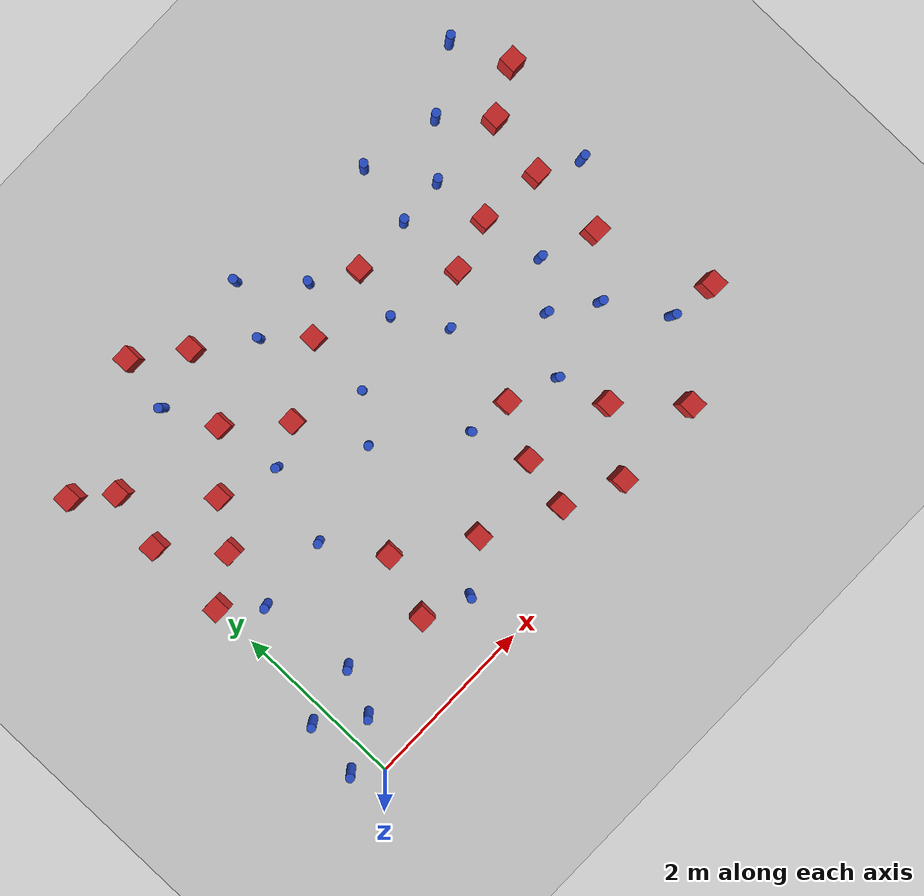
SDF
<sdf version="1.6">
 <world name="default">
  <model name="ground_plane">
   <static>1</static>
   <link name="link">
    <collision name="collision">
     <geometry><plane><normal>0 0 1</normal><size>100 100</size></plane></geometry>
     <surface><friction><ode><mu>100</mu><mu2>50</mu2></ode></friction></surface>
    </collision>
    <visual name="visual">
     <cast_shadows>0</cast_shadows>
     <geometry><plane><normal>0 0 1</normal><size>100 100</size></plane></geometry>
     <material>
      <ambient>1.0 1.0 1.0 1.0</ambient>
      <diffuse>0.8 0.8 0.8 1.0</diffuse>
      <specular>0.01 0.01 0.01 1.000000</specular>
     </material>
    </visual>
   </link>
  </model>
  <model name="pole_obstacle1">
   <static>true</static>
   <pose>2.42879736191 4.18457086736 2.88873142074e-08 -9.90536689859e-09 4.60219948989e-07 -1.20965994961e-07</pose>
   <link name="link">
    <pose>0 0 0.3 0 -0 0</pose>
    <inertial>
     <mass>1</mass>
     <inertia><ixx>0.145833</ixx><ixy>0</ixy><ixz>0</ixz><iyy>0.145833</iyy><iyz>0</iyz><izz>0.125</izz></inertia>
    </inertial>
    <collision name="collision">
     <geometry><cylinder><radius>0.05</radius><length>.6</length></cylinder></geometry>
    </collision>
    <visual name="visual">
     <geometry><cylinder><radius>0.05</radius><length>.6</length></cylinder></geometry>
     <material>
      <script><name>Gazebo/Blue</name><uri>file://media/materials/scripts/gazebo.material</uri></script>
     </material>
    </visual>
   </link>
  </model>
  <model name="square_post_obstacle9">
   <static>true</static>
   <pose>1.46546212937 3.84372808108 8.22691968438e-08 7.2212513382e-06 -7.54495500217e-07 2.29674213826e-05</pose>
   <link name="link">
    <pose>0 0 0.25 0 -0 0</pose>
    <inertial>
     <mass>100</mass>
     <inertia>
      <ixx>0.166667</ixx>
      <ixy>0</ixy>
      <ixz>0</ixz>
      <iyy>0.166667</iyy>
      <iyz>0</iyz>
      <izz>0.166667</izz>
     </inertia>
    </inertial>
    <collision name="collision"><geometry><box><size>.2 .2 .5</size></box></geometry></collision>
    <visual name="visual">
     <geometry><box><size>.2 .2 .5</size></box></geometry>
     <material>
      <script><name>Gazebo/Red</name><uri>file://media/materials/scripts/gazebo.material</uri></script>
     </material>
    </visual>
   </link>
  </model>
  <model name="square_post_obstacle25">
   <static>true</static>
   <pose>5.09198572183 0.379569240633 8.22691968438e-08 7.2212513382e-06 -7.54495500217e-07 2.29674213826e-05</pose>
   <link name="link">
    <pose>0 0 0.25 0 -0 0</pose>
    <inertial>
     <mass>100</mass>
     <inertia>
      <ixx>0.166667</ixx>
      <ixy>0</ixy>
      <ixz>0</ixz>
      <iyy>0.166667</iyy>
      <iyz>0</iyz>
      <izz>0.166667</izz>
     </inertia>
    </inertial>
    <collision name="collision"><geometry><box><size>.2 .2 .5</size></box></geometry></collision>
    <visual name="visual">
     <geometry><box><size>.2 .2 .5</size></box></geometry>
     <material>
      <script><name>Gazebo/Red</name><uri>file://media/materials/scripts/gazebo.material</uri></script>
     </material>
    </visual>
   </link>
  </model>
  <model name="pole_obstacle24">
   <static>true</static>
   <pose>2.69714781437 4.78767704699 2.88873142074e-08 -9.90536689859e-09 4.60219948989e-07 -1.20965994961e-07</pose>
   <link name="link">
    <pose>0 0 0.3 0 -0 0</pose>
    <inertial>
     <mass>1</mass>
     <inertia><ixx>0.145833</ixx><ixy>0</ixy><ixz>0</ixz><iyy>0.145833</iyy><iyz>0</iyz><izz>0.125</izz></inertia>
    </inertial>
    <collision name="collision">
     <geometry><cylinder><radius>0.05</radius><length>.6</length></cylinder></geometry>
    </collision>
    <visual name="visual">
     <geometry><cylinder><radius>0.05</radius><length>.6</length></cylinder></geometry>
     <material>
      <script><name>Gazebo/Blue</name><uri>file://media/materials/scripts/gazebo.material</uri></script>
     </material>
    </visual>
   </link>
  </model>
  <model name="pole_obstacle30">
   <static>true</static>
   <pose>2.00604831403 0.665068035087 2.88873142074e-08 -9.90536689439e-09 4.60219948999e-07 -1.20965994955e-07</pose>
   <link name="link">
    <pose>0 0 0.3 0 -0 0</pose>
    <inertial>
     <mass>1</mass>
     <inertia><ixx>0.145833</ixx><ixy>0</ixy><ixz>0</ixz><iyy>0.145833</iyy><iyz>0</iyz><izz>0.125</izz></inertia>
    </inertial>
    <collision name="collision">
     <geometry><cylinder><radius>0.05</radius><length>.6</length></cylinder></geometry>
    </collision>
    <visual name="visual">
     <geometry><cylinder><radius>0.05</radius><length>.6</length></cylinder></geometry>
     <material>
      <script><name>Gazebo/Blue</name><uri>file://media/materials/scripts/gazebo.material</uri></script>
     </material>
    </visual>
   </link>
  </model>
  <model name="square_post_obstacle35">
   <static>true</static>
   <pose>4.41631384137 3.15511355681 8.22691968438e-08 7.2212513382e-06 -7.54495500217e-07 2.29674213826e-05</pose>
   <link name="link">
    <pose>0 0 0.25 0 -0 0</pose>
    <inertial>
     <mass>100</mass>
     <inertia>
      <ixx>0.166667</ixx>
      <ixy>0</ixy>
      <ixz>0</ixz>
      <iyy>0.166667</iyy>
      <iyz>0</iyz>
      <izz>0.166667</izz>
     </inertia>
    </inertial>
    <collision name="collision"><geometry><box><size>.2 .2 .5</size></box></geometry></collision>
    <visual name="visual">
     <geometry><box><size>.2 .2 .5</size></box></geometry>
     <material>
      <script><name>Gazebo/Red</name><uri>file://media/materials/scripts/gazebo.material</uri></script>
     </material>
    </visual>
   </link>
  </model>
  <model name="square_post_obstacle36">
   <static>true</static>
   <pose>5.7311031126 2.38789803217 8.22691968438e-08 7.2212513382e-06 -7.54495500217e-07 2.29674213826e-05</pose>
   <link name="link">
    <pose>0 0 0.25 0 -0 0</pose>
    <inertial>
     <mass>100</mass>
     <inertia>
      <ixx>0.166667</ixx>
      <ixy>0</ixy>
      <ixz>0</ixz>
      <iyy>0.166667</iyy>
      <iyz>0</iyz>
      <izz>0.166667</izz>
     </inertia>
    </inertial>
    <collision name="collision"><geometry><box><size>.2 .2 .5</size></box></geometry></collision>
    <visual name="visual">
     <geometry><box><size>.2 .2 .5</size></box></geometry>
     <material>
      <script><name>Gazebo/Red</name><uri>file://media/materials/scripts/gazebo.material</uri></script>
     </material>
    </visual>
   </link>
  </model>
  <model name="square_post_obstacle38">
   <static>true</static>
   <pose>0.91676435713 3.32296209286 8.22691968438e-08 7.2212513382e-06 -7.54495500217e-07 2.29674213826e-05</pose>
   <link name="link">
    <pose>0 0 0.25 0 -0 0</pose>
    <inertial>
     <mass>100</mass>
     <inertia>
      <ixx>0.166667</ixx>
      <ixy>0</ixy>
      <ixz>0</ixz>
      <iyy>0.166667</iyy>
      <iyz>0</iyz>
      <izz>0.166667</izz>
     </inertia>
    </inertial>
    <collision name="collision"><geometry><box><size>.2 .2 .5</size></box></geometry></collision>
    <visual name="visual">
     <geometry><box><size>.2 .2 .5</size></box></geometry>
     <material>
      <script><name>Gazebo/Red</name><uri>file://media/materials/scripts/gazebo.material</uri></script>
     </material>
    </visual>
   </link>
  </model>
  <model name="square_post_obstacle39">
   <static>true</static>
   <pose>1.48990750921 0.880755100944 8.22691968438e-08 7.2212513382e-06 -7.54495500217e-07 2.29674213826e-05</pose>
   <link name="link">
    <pose>0 0 0.25 0 -0 0</pose>
    <inertial>
     <mass>100</mass>
     <inertia>
      <ixx>0.166667</ixx>
      <ixy>0</ixy>
      <ixz>0</ixz>
      <iyy>0.166667</iyy>
      <iyz>0</iyz>
      <izz>0.166667</izz>
     </inertia>
    </inertial>
    <collision name="collision"><geometry><box><size>.2 .2 .5</size></box></geometry></collision>
    <visual name="visual">
     <geometry><box><size>.2 .2 .5</size></box></geometry>
     <material>
      <script><name>Gazebo/Red</name><uri>file://media/materials/scripts/gazebo.material</uri></script>
     </material>
    </visual>
   </link>
  </model>
  <model name="square_post_obstacle44">
   <static>true</static>
   <pose>2.83607221514 3.76554138806 8.22691968438e-08 7.2212513382e-06 -7.54495500217e-07 2.29674213826e-05</pose>
   <link name="link">
    <pose>0 0 0.25 0 -0 0</pose>
    <inertial>
     <mass>100</mass>
     <inertia>
      <ixx>0.166667</ixx>
      <ixy>0</ixy>
      <ixz>0</ixz>
      <iyy>0.166667</iyy>
      <iyz>0</iyz>
      <izz>0.166667</izz>
     </inertia>
    </inertial>
    <collision name="collision"><geometry><box><size>.2 .2 .5</size></box></geometry></collision>
    <visual name="visual">
     <geometry><box><size>.2 .2 .5</size></box></geometry>
     <material>
      <script><name>Gazebo/Red</name><uri>file://media/materials/scripts/gazebo.material</uri></script>
     </material>
    </visual>
   </link>
  </model>
  <model name="pole_obstacle58">
   <static>true</static>
   <pose>4.32657817488 1.60059942653 2.88873142074e-08 -9.90536689445e-09 4.60219948999e-07 -1.20965994956e-07</pose>
   <link name="link">
    <pose>0 0 0.3 0 -0 0</pose>
    <inertial>
     <mass>1</mass>
     <inertia><ixx>0.145833</ixx><ixy>0</ixy><ixz>0</ixz><iyy>0.145833</iyy><iyz>0</iyz><izz>0.125</izz></inertia>
    </inertial>
    <collision name="collision">
     <geometry><cylinder><radius>0.05</radius><length>.6</length></cylinder></geometry>
    </collision>
    <visual name="visual">
     <geometry><cylinder><radius>0.05</radius><length>.6</length></cylinder></geometry>
     <material>
      <script><name>Gazebo/Blue</name><uri>file://media/materials/scripts/gazebo.material</uri></script>
     </material>
    </visual>
   </link>
  </model>
  <model name="square_post_obstacle63">
   <static>true</static>
   <pose>6.16989699377 1.10194753683 8.22691968438e-08 7.2212513382e-06 -7.54495500217e-07 2.29674213826e-05</pose>
   <link name="link">
    <pose>0 0 0.25 0 -0 0</pose>
    <inertial>
     <mass>100</mass>
     <inertia>
      <ixx>0.166667</ixx>
      <ixy>0</ixy>
      <ixz>0</ixz>
      <iyy>0.166667</iyy>
      <iyz>0</iyz>
      <izz>0.166667</izz>
     </inertia>
    </inertial>
    <collision name="collision"><geometry><box><size>.2 .2 .5</size></box></geometry></collision>
    <visual name="visual">
     <geometry><box><size>.2 .2 .5</size></box></geometry>
     <material>
      <script><name>Gazebo/Red</name><uri>file://media/materials/scripts/gazebo.material</uri></script>
     </material>
    </visual>
   </link>
  </model>
  <model name="pole_obstacle61">
   <static>true</static>
   <pose>0.33544223323 0.570125460111 2.88873142074e-08 -9.9053668986e-09 4.60219948989e-07 -1.20965994961e-07</pose>
   <link name="link">
    <pose>0 0 0.3 0 -0 0</pose>
    <inertial>
     <mass>1</mass>
     <inertia><ixx>0.145833</ixx><ixy>0</ixy><ixz>0</ixz><iyy>0.145833</iyy><iyz>0</iyz><izz>0.125</izz></inertia>
    </inertial>
    <collision name="collision">
     <geometry><cylinder><radius>0.05</radius><length>.6</length></cylinder></geometry>
    </collision>
    <visual name="visual">
     <geometry><cylinder><radius>0.05</radius><length>.6</length></cylinder></geometry>
     <material>
      <script><name>Gazebo/Blue</name><uri>file://media/materials/scripts/gazebo.material</uri></script>
     </material>
    </visual>
   </link>
  </model>
  <model name="square_post_obstacle65">
   <static>true</static>
   <pose>2.52627936273 1.03918405239 8.22691968438e-08 7.2212513382e-06 -7.54495500217e-07 2.29674213826e-05</pose>
   <link name="link">
    <pose>0 0 0.25 0 -0 0</pose>
    <inertial>
     <mass>100</mass>
     <inertia>
      <ixx>0.166667</ixx>
      <ixy>0</ixy>
      <ixz>0</ixz>
      <iyy>0.166667</iyy>
      <iyz>0</iyz>
      <izz>0.166667</izz>
     </inertia>
    </inertial>
    <collision name="collision"><geometry><box><size>.2 .2 .5</size></box></geometry></collision>
    <visual name="visual">
     <geometry><box><size>.2 .2 .5</size></box></geometry>
     <material>
      <script><name>Gazebo/Red</name><uri>file://media/materials/scripts/gazebo.material</uri></script>
     </material>
    </visual>
   </link>
  </model>
  <model name="square_post_obstacle69">
   <static>true</static>
   <pose>-0.185591999137 4.46452771068 8.22691968438e-08 7.22125133819e-06 -7.54495500217e-07 2.29674213826e-05</pose>
   <link name="link">
    <pose>0 0 0.25 0 -0 0</pose>
    <inertial>
     <mass>100</mass>
     <inertia>
      <ixx>0.166667</ixx>
      <ixy>0</ixy>
      <ixz>0</ixz>
      <iyy>0.166667</iyy>
      <iyz>0</iyz>
      <izz>0.166667</izz>
     </inertia>
    </inertial>
    <collision name="collision"><geometry><box><size>.2 .2 .5</size></box></geometry></collision>
    <visual name="visual">
     <geometry><box><size>.2 .2 .5</size></box></geometry>
     <material>
      <script><name>Gazebo/Red</name><uri>file://media/materials/scripts/gazebo.material</uri></script>
     </material>
    </visual>
   </link>
  </model>
  <model name="square_post_obstacle72">
   <static>true</static>
   <pose>5.85654030803 3.98428642009 8.22691968438e-08 7.2212513382e-06 -7.54495500217e-07 2.29674213826e-05</pose>
   <link name="link">
    <pose>0 0 0.25 0 -0 0</pose>
    <inertial>
     <mass>100</mass>
     <inertia>
      <ixx>0.166667</ixx>
      <ixy>0</ixy>
      <ixz>0</ixz>
      <iyy>0.166667</iyy>
      <iyz>0</iyz>
      <izz>0.166667</izz>
     </inertia>
    </inertial>
    <collision name="collision"><geometry><box><size>.2 .2 .5</size></box></geometry></collision>
    <visual name="visual">
     <geometry><box><size>.2 .2 .5</size></box></geometry>
     <material>
      <script><name>Gazebo/Red</name><uri>file://media/materials/scripts/gazebo.material</uri></script>
     </material>
    </visual>
   </link>
  </model>
  <model name="pole_obstacle75">
   <static>true</static>
   <pose>1.30411790574 2.22393959754 2.88873142074e-08 -9.90536689791e-09 4.6021994899e-07 -1.20965994959e-07</pose>
   <link name="link">
    <pose>0 0 0.3 0 -0 0</pose>
    <inertial>
     <mass>1</mass>
     <inertia><ixx>0.145833</ixx><ixy>0</ixy><ixz>0</ixz><iyy>0.145833</iyy><iyz>0</iyz><izz>0.125</izz></inertia>
    </inertial>
    <collision name="collision">
     <geometry><cylinder><radius>0.05</radius><length>.6</length></cylinder></geometry>
    </collision>
    <visual name="visual">
     <geometry><cylinder><radius>0.05</radius><length>.6</length></cylinder></geometry>
     <material>
      <script><name>Gazebo/Blue</name><uri>file://media/materials/scripts/gazebo.material</uri></script>
     </material>
    </visual>
   </link>
  </model>
  <model name="pole_obstacle78">
   <static>true</static>
   <pose>0.425904295842 2.16052627822 2.88873142074e-08 -9.90536689663e-09 4.60219948993e-07 -1.20965994959e-07</pose>
   <link name="link">
    <pose>0 0 0.3 0 -0 0</pose>
    <inertial>
     <mass>1</mass>
     <inertia><ixx>0.145833</ixx><ixy>0</ixy><ixz>0</ixz><iyy>0.145833</iyy><iyz>0</iyz><izz>0.125</izz></inertia>
    </inertial>
    <collision name="collision">
     <geometry><cylinder><radius>0.05</radius><length>.6</length></cylinder></geometry>
    </collision>
    <visual name="visual">
     <geometry><cylinder><radius>0.05</radius><length>.6</length></cylinder></geometry>
     <material>
      <script><name>Gazebo/Blue</name><uri>file://media/materials/scripts/gazebo.material</uri></script>
     </material>
    </visual>
   </link>
  </model>
  <model name="pole_obstacle81">
   <static>true</static>
   <pose>3.2746297439 1.86817827483 2.88873142074e-08 -9.90536689395e-09 4.60219949e-07 -1.20965994953e-07</pose>
   <link name="link">
    <pose>0 0 0.3 0 -0 0</pose>
    <inertial>
     <mass>1</mass>
     <inertia><ixx>0.145833</ixx><ixy>0</ixy><ixz>0</ixz><iyy>0.145833</iyy><iyz>0</iyz><izz>0.125</izz></inertia>
    </inertial>
    <collision name="collision">
     <geometry><cylinder><radius>0.05</radius><length>.6</length></cylinder></geometry>
    </collision>
    <visual name="visual">
     <geometry><cylinder><radius>0.05</radius><length>.6</length></cylinder></geometry>
     <material>
      <script><name>Gazebo/Blue</name><uri>file://media/materials/scripts/gazebo.material</uri></script>
     </material>
    </visual>
   </link>
  </model>
  <model name="pole_obstacle86">
   <static>true</static>
   <pose>6.12498636645 4.90773806376 2.88873142074e-08 -9.90536690842e-09 4.60219948965e-07 -1.20965994976e-07</pose>
   <link name="link">
    <pose>0 0 0.3 0 -0 0</pose>
    <inertial>
     <mass>1</mass>
     <inertia><ixx>0.145833</ixx><ixy>0</ixy><ixz>0</ixz><iyy>0.145833</iyy><iyz>0</iyz><izz>0.125</izz></inertia>
    </inertial>
    <collision name="collision">
     <geometry><cylinder><radius>0.05</radius><length>.6</length></cylinder></geometry>
    </collision>
    <visual name="visual">
     <geometry><cylinder><radius>0.05</radius><length>.6</length></cylinder></geometry>
     <material>
      <script><name>Gazebo/Blue</name><uri>file://media/materials/scripts/gazebo.material</uri></script>
     </material>
    </visual>
   </link>
  </model>
  <model name="pole_obstacle96">
   <static>true</static>
   <pose>0.559772825662 1.08389808421 2.88873142074e-08 -9.90536689855e-09 4.60219948989e-07 -1.20965994962e-07</pose>
   <link name="link">
    <pose>0 0 0.3 0 -0 0</pose>
    <inertial>
     <mass>1</mass>
     <inertia><ixx>0.145833</ixx><ixy>0</ixy><ixz>0</ixz><iyy>0.145833</iyy><iyz>0</iyz><izz>0.125</izz></inertia>
    </inertial>
    <collision name="collision">
     <geometry><cylinder><radius>0.05</radius><length>.6</length></cylinder></geometry>
    </collision>
    <visual name="visual">
     <geometry><cylinder><radius>0.05</radius><length>.6</length></cylinder></geometry>
     <material>
      <script><name>Gazebo/Blue</name><uri>file://media/materials/scripts/gazebo.material</uri></script>
     </material>
    </visual>
   </link>
  </model>
  <model name="pole_obstacle97">
   <static>true</static>
   <pose>4.74378613118 2.1611026884 2.88873142074e-08 -9.90536690245e-09 4.6021994898e-07 -1.20965994966e-07</pose>
   <link name="link">
    <pose>0 0 0.3 0 -0 0</pose>
    <inertial>
     <mass>1</mass>
     <inertia><ixx>0.145833</ixx><ixy>0</ixy><ixz>0</ixz><iyy>0.145833</iyy><iyz>0</iyz><izz>0.125</izz></inertia>
    </inertial>
    <collision name="collision">
     <geometry><cylinder><radius>0.05</radius><length>.6</length></cylinder></geometry>
    </collision>
    <visual name="visual">
     <geometry><cylinder><radius>0.05</radius><length>.6</length></cylinder></geometry>
     <material>
      <script><name>Gazebo/Blue</name><uri>file://media/materials/scripts/gazebo.material</uri></script>
     </material>
    </visual>
   </link>
  </model>
  <model name="square_post_obstacle94">
   <static>true</static>
   <pose>5.74151208858 3.26293217568 8.22691968438e-08 7.2212513382e-06 -7.54495500217e-07 2.29674213826e-05</pose>
   <link name="link">
    <pose>0 0 0.25 0 -0 0</pose>
    <inertial>
     <mass>100</mass>
     <inertia>
      <ixx>0.166667</ixx>
      <ixy>0</ixy>
      <ixz>0</ixz>
      <iyy>0.166667</iyy>
      <iyz>0</iyz>
      <izz>0.166667</izz>
     </inertia>
    </inertial>
    <collision name="collision"><geometry><box><size>.2 .2 .5</size></box></geometry></collision>
    <visual name="visual">
     <geometry><box><size>.2 .2 .5</size></box></geometry>
     <material>
      <script><name>Gazebo/Red</name><uri>file://media/materials/scripts/gazebo.material</uri></script>
     </material>
    </visual>
   </link>
  </model>
  <model name="pole_obstacle118">
   <static>true</static>
   <pose>2.78810854611 3.00477062767 2.88873142074e-08 -9.90536690232e-09 4.6021994898e-07 -1.20965994968e-07</pose>
   <link name="link">
    <pose>0 0 0.3 0 -0 0</pose>
    <inertial>
     <mass>1</mass>
     <inertia><ixx>0.145833</ixx><ixy>0</ixy><ixz>0</ixz><iyy>0.145833</iyy><iyz>0</iyz><izz>0.125</izz></inertia>
    </inertial>
    <collision name="collision">
     <geometry><cylinder><radius>0.05</radius><length>.6</length></cylinder></geometry>
    </collision>
    <visual name="visual">
     <geometry><cylinder><radius>0.05</radius><length>.6</length></cylinder></geometry>
     <material>
      <script><name>Gazebo/Blue</name><uri>file://media/materials/scripts/gazebo.material</uri></script>
     </material>
    </visual>
   </link>
  </model>
  <model name="pole_obstacle126">
   <static>true</static>
   <pose>4.94650584808 3.96422720678 2.88873142074e-08 -9.9053669014e-09 4.60219948982e-07 -1.20965994965e-07</pose>
   <link name="link">
    <pose>0 0 0.3 0 -0 0</pose>
    <inertial>
     <mass>1</mass>
     <inertia><ixx>0.145833</ixx><ixy>0</ixy><ixz>0</ixz><iyy>0.145833</iyy><iyz>0</iyz><izz>0.125</izz></inertia>
    </inertial>
    <collision name="collision">
     <geometry><cylinder><radius>0.05</radius><length>.6</length></cylinder></geometry>
    </collision>
    <visual name="visual">
     <geometry><cylinder><radius>0.05</radius><length>.6</length></cylinder></geometry>
     <material>
      <script><name>Gazebo/Blue</name><uri>file://media/materials/scripts/gazebo.material</uri></script>
     </material>
    </visual>
   </link>
  </model>
  <model name="pole_obstacle129">
   <static>true</static>
   <pose>1.56967960495 3.09597458498 2.88873142074e-08 -9.90536689791e-09 4.6021994899e-07 -1.20965994959e-07</pose>
   <link name="link">
    <pose>0 0 0.3 0 -0 0</pose>
    <inertial>
     <mass>1</mass>
     <inertia><ixx>0.145833</ixx><ixy>0</ixy><ixz>0</ixz><iyy>0.145833</iyy><iyz>0</iyz><izz>0.125</izz></inertia>
    </inertial>
    <collision name="collision">
     <geometry><cylinder><radius>0.05</radius><length>.6</length></cylinder></geometry>
    </collision>
    <visual name="visual">
     <geometry><cylinder><radius>0.05</radius><length>.6</length></cylinder></geometry>
     <material>
      <script><name>Gazebo/Blue</name><uri>file://media/materials/scripts/gazebo.material</uri></script>
     </material>
    </visual>
   </link>
  </model>
  <model name="pole_obstacle131">
   <static>true</static>
   <pose>6.18899241127 3.01864340749 2.88873142074e-08 -9.90536690245e-09 4.6021994898e-07 -1.20965994966e-07</pose>
   <link name="link">
    <pose>0 0 0.3 0 -0 0</pose>
    <inertial>
     <mass>1</mass>
     <inertia><ixx>0.145833</ixx><ixy>0</ixy><ixz>0</ixz><iyy>0.145833</iyy><iyz>0</iyz><izz>0.125</izz></inertia>
    </inertial>
    <collision name="collision">
     <geometry><cylinder><radius>0.05</radius><length>.6</length></cylinder></geometry>
    </collision>
    <visual name="visual">
     <geometry><cylinder><radius>0.05</radius><length>.6</length></cylinder></geometry>
     <material>
      <script><name>Gazebo/Blue</name><uri>file://media/materials/scripts/gazebo.material</uri></script>
     </material>
    </visual>
   </link>
  </model>
  <model name="square_post_obstacle115">
   <static>true</static>
   <pose>0.0600240100934 3.45407741172 8.22691968438e-08 7.2212513382e-06 -7.54495500217e-07 2.29674213826e-05</pose>
   <link name="link">
    <pose>0 0 0.25 0 -0 0</pose>
    <inertial>
     <mass>100</mass>
     <inertia>
      <ixx>0.166667</ixx>
      <ixy>0</ixy>
      <ixz>0</ixz>
      <iyy>0.166667</iyy>
      <iyz>0</iyz>
      <izz>0.166667</izz>
     </inertia>
    </inertial>
    <collision name="collision"><geometry><box><size>.2 .2 .5</size></box></geometry></collision>
    <visual name="visual">
     <geometry><box><size>.2 .2 .5</size></box></geometry>
     <material>
      <script><name>Gazebo/Red</name><uri>file://media/materials/scripts/gazebo.material</uri></script>
     </material>
    </visual>
   </link>
  </model>
  <model name="pole_obstacle142">
   <static>true</static>
   <pose>1.17959275602 4.41900972002 2.88873142074e-08 -9.90536689852e-09 4.60219948989e-07 -1.2096599496e-07</pose>
   <link name="link">
    <pose>0 0 0.3 0 -0 0</pose>
    <inertial>
     <mass>1</mass>
     <inertia><ixx>0.145833</ixx><ixy>0</ixy><ixz>0</ixz><iyy>0.145833</iyy><iyz>0</iyz><izz>0.125</izz></inertia>
    </inertial>
    <collision name="collision">
     <geometry><cylinder><radius>0.05</radius><length>.6</length></cylinder></geometry>
    </collision>
    <visual name="visual">
     <geometry><cylinder><radius>0.05</radius><length>.6</length></cylinder></geometry>
     <material>
      <script><name>Gazebo/Blue</name><uri>file://media/materials/scripts/gazebo.material</uri></script>
     </material>
    </visual>
   </link>
  </model>
  <model name="square_post_obstacle138">
   <static>true</static>
   <pose>3.48127715931 1.21678811988 8.22691968438e-08 7.2212513382e-06 -7.54495500217e-07 2.29674213826e-05</pose>
   <link name="link">
    <pose>0 0 0.25 0 -0 0</pose>
    <inertial>
     <mass>100</mass>
     <inertia>
      <ixx>0.166667</ixx>
      <ixy>0</ixy>
      <ixz>0</ixz>
      <iyy>0.166667</iyy>
      <iyz>0</iyz>
      <izz>0.166667</izz>
     </inertia>
    </inertial>
    <collision name="collision"><geometry><box><size>.2 .2 .5</size></box></geometry></collision>
    <visual name="visual">
     <geometry><box><size>.2 .2 .5</size></box></geometry>
     <material>
      <script><name>Gazebo/Red</name><uri>file://media/materials/scripts/gazebo.material</uri></script>
     </material>
    </visual>
   </link>
  </model>
  <model name="pole_obstacle150">
   <static>true</static>
   <pose>-0.233403696445 0.285102000751 2.88873142074e-08 -9.9053669007e-09 4.60219948984e-07 -1.20965994963e-07</pose>
   <link name="link">
    <pose>0 0 0.3 0 -0 0</pose>
    <inertial>
     <mass>1</mass>
     <inertia><ixx>0.145833</ixx><ixy>0</ixy><ixz>0</ixz><iyy>0.145833</iyy><iyz>0</iyz><izz>0.125</izz></inertia>
    </inertial>
    <collision name="collision">
     <geometry><cylinder><radius>0.05</radius><length>.6</length></cylinder></geometry>
    </collision>
    <visual name="visual">
     <geometry><cylinder><radius>0.05</radius><length>.6</length></cylinder></geometry>
     <material>
      <script><name>Gazebo/Blue</name><uri>file://media/materials/scripts/gazebo.material</uri></script>
     </material>
    </visual>
   </link>
  </model>
  <model name="pole_obstacle163">
   <static>true</static>
   <pose>4.39537630237 3.92787281876 2.88873142074e-08 -9.90536690245e-09 4.6021994898e-07 -1.20965994966e-07</pose>
   <link name="link">
    <pose>0 0 0.3 0 -0 0</pose>
    <inertial>
     <mass>1</mass>
     <inertia><ixx>0.145833</ixx><ixy>0</ixy><ixz>0</ixz><iyy>0.145833</iyy><iyz>0</iyz><izz>0.125</izz></inertia>
    </inertial>
    <collision name="collision">
     <geometry><cylinder><radius>0.05</radius><length>.6</length></cylinder></geometry>
    </collision>
    <visual name="visual">
     <geometry><cylinder><radius>0.05</radius><length>.6</length></cylinder></geometry>
     <material>
      <script><name>Gazebo/Blue</name><uri>file://media/materials/scripts/gazebo.material</uri></script>
     </material>
    </visual>
   </link>
  </model>
  <model name="square_post_obstacle156">
   <static>true</static>
   <pose>6.41017928002 4.26877285427 8.22691968438e-08 7.2212513382e-06 -7.54495500217e-07 2.29674213826e-05</pose>
   <link name="link">
    <pose>0 0 0.25 0 -0 0</pose>
    <inertial>
     <mass>100</mass>
     <inertia>
      <ixx>0.166667</ixx>
      <ixy>0</ixy>
      <ixz>0</ixz>
      <iyy>0.166667</iyy>
      <iyz>0</iyz>
      <izz>0.166667</izz>
     </inertia>
    </inertial>
    <collision name="collision"><geometry><box><size>.2 .2 .5</size></box></geometry></collision>
    <visual name="visual">
     <geometry><box><size>.2 .2 .5</size></box></geometry>
     <material>
      <script><name>Gazebo/Red</name><uri>file://media/materials/scripts/gazebo.material</uri></script>
     </material>
    </visual>
   </link>
  </model>
  <model name="pole_obstacle165">
   <static>true</static>
   <pose>2.41158403631 2.55248867163 2.88873142074e-08 -9.90536690232e-09 4.6021994898e-07 -1.20965994968e-07</pose>
   <link name="link">
    <pose>0 0 0.3 0 -0 0</pose>
    <inertial>
     <mass>1</mass>
     <inertia><ixx>0.145833</ixx><ixy>0</ixy><ixz>0</ixz><iyy>0.145833</iyy><iyz>0</iyz><izz>0.125</izz></inertia>
    </inertial>
    <collision name="collision">
     <geometry><cylinder><radius>0.05</radius><length>.6</length></cylinder></geometry>
    </collision>
    <visual name="visual">
     <geometry><cylinder><radius>0.05</radius><length>.6</length></cylinder></geometry>
     <material>
      <script><name>Gazebo/Blue</name><uri>file://media/materials/scripts/gazebo.material</uri></script>
     </material>
    </visual>
   </link>
  </model>
  <model name="square_post_obstacle162">
   <static>true</static>
   <pose>3.77126498075 1.80673574161 8.22691968438e-08 7.2212513382e-06 -7.54495500217e-07 2.29674213826e-05</pose>
   <link name="link">
    <pose>0 0 0.25 0 -0 0</pose>
    <inertial>
     <mass>100</mass>
     <inertia>
      <ixx>0.166667</ixx>
      <ixy>0</ixy>
      <ixz>0</ixz>
      <iyy>0.166667</iyy>
      <iyz>0</iyz>
      <izz>0.166667</izz>
     </inertia>
    </inertial>
    <collision name="collision"><geometry><box><size>.2 .2 .5</size></box></geometry></collision>
    <visual name="visual">
     <geometry><box><size>.2 .2 .5</size></box></geometry>
     <material>
      <script><name>Gazebo/Red</name><uri>file://media/materials/scripts/gazebo.material</uri></script>
     </material>
    </visual>
   </link>
  </model>
  <model name="pole_obstacle176">
   <static>true</static>
   <pose>5.64681072859 1.17182096012 2.88873142074e-08 -9.90536689445e-09 4.60219948999e-07 -1.20965994956e-07</pose>
   <link name="link">
    <pose>0 0 0.3 0 -0 0</pose>
    <inertial>
     <mass>1</mass>
     <inertia><ixx>0.145833</ixx><ixy>0</ixy><ixz>0</ixz><iyy>0.145833</iyy><iyz>0</iyz><izz>0.125</izz></inertia>
    </inertial>
    <collision name="collision">
     <geometry><cylinder><radius>0.05</radius><length>.6</length></cylinder></geometry>
    </collision>
    <visual name="visual">
     <geometry><cylinder><radius>0.05</radius><length>.6</length></cylinder></geometry>
     <material>
      <script><name>Gazebo/Blue</name><uri>file://media/materials/scripts/gazebo.material</uri></script>
     </material>
    </visual>
   </link>
  </model>
  <model name="pole_obstacle182">
   <static>true</static>
   <pose>5.22253149761 1.82782356244 2.88873142074e-08 -9.90536689445e-09 4.60219948999e-07 -1.20965994956e-07</pose>
   <link name="link">
    <pose>0 0 0.3 0 -0 0</pose>
    <inertial>
     <mass>1</mass>
     <inertia><ixx>0.145833</ixx><ixy>0</ixy><ixz>0</ixz><iyy>0.145833</iyy><iyz>0</iyz><izz>0.125</izz></inertia>
    </inertial>
    <collision name="collision">
     <geometry><cylinder><radius>0.05</radius><length>.6</length></cylinder></geometry>
    </collision>
    <visual name="visual">
     <geometry><cylinder><radius>0.05</radius><length>.6</length></cylinder></geometry>
     <material>
      <script><name>Gazebo/Blue</name><uri>file://media/materials/scripts/gazebo.material</uri></script>
     </material>
    </visual>
   </link>
  </model>
  <model name="pole_obstacle183">
   <static>true</static>
   <pose>3.56410900929 3.33144393829 2.88873142074e-08 -9.90536690232e-09 4.6021994898e-07 -1.20965994968e-07</pose>
   <link name="link">
    <pose>0 0 0.3 0 -0 0</pose>
    <inertial>
     <mass>1</mass>
     <inertia><ixx>0.145833</ixx><ixy>0</ixy><ixz>0</ixz><iyy>0.145833</iyy><iyz>0</iyz><izz>0.125</izz></inertia>
    </inertial>
    <collision name="collision">
     <geometry><cylinder><radius>0.05</radius><length>.6</length></cylinder></geometry>
    </collision>
    <visual name="visual">
     <geometry><cylinder><radius>0.05</radius><length>.6</length></cylinder></geometry>
     <material>
      <script><name>Gazebo/Blue</name><uri>file://media/materials/scripts/gazebo.material</uri></script>
     </material>
    </visual>
   </link>
  </model>
  <model name="square_post_obstacle176">
   <static>true</static>
   <pose>0.201585097169 4.1277748585 8.22691968438e-08 7.2212513382e-06 -7.54495500217e-07 2.29674213826e-05</pose>
   <link name="link">
    <pose>0 0 0.25 0 -0 0</pose>
    <inertial>
     <mass>100</mass>
     <inertia>
      <ixx>0.166667</ixx>
      <ixy>0</ixy>
      <ixz>0</ixz>
      <iyy>0.166667</iyy>
      <iyz>0</iyz>
      <izz>0.166667</izz>
     </inertia>
    </inertial>
    <collision name="collision"><geometry><box><size>.2 .2 .5</size></box></geometry></collision>
    <visual name="visual">
     <geometry><box><size>.2 .2 .5</size></box></geometry>
     <material>
      <script><name>Gazebo/Red</name><uri>file://media/materials/scripts/gazebo.material</uri></script>
     </material>
    </visual>
   </link>
  </model>
  <model name="square_post_obstacle179">
   <static>true</static>
   <pose>3.36742371797 0.625798688379 8.22691968438e-08 7.2212513382e-06 -7.54495500217e-07 2.29674213826e-05</pose>
   <link name="link">
    <pose>0 0 0.25 0 -0 0</pose>
    <inertial>
     <mass>100</mass>
     <inertia>
      <ixx>0.166667</ixx>
      <ixy>0</ixy>
      <ixz>0</ixz>
      <iyy>0.166667</iyy>
      <iyz>0</iyz>
      <izz>0.166667</izz>
     </inertia>
    </inertial>
    <collision name="collision"><geometry><box><size>.2 .2 .5</size></box></geometry></collision>
    <visual name="visual">
     <geometry><box><size>.2 .2 .5</size></box></geometry>
     <material>
      <script><name>Gazebo/Red</name><uri>file://media/materials/scripts/gazebo.material</uri></script>
     </material>
    </visual>
   </link>
  </model>
  <model name="square_post_obstacle183">
   <static>true</static>
   <pose>5.00775353851 3.32940831312 8.22691968438e-08 7.2212513382e-06 -7.54495500217e-07 2.29674213826e-05</pose>
   <link name="link">
    <pose>0 0 0.25 0 -0 0</pose>
    <inertial>
     <mass>100</mass>
     <inertia>
      <ixx>0.166667</ixx>
      <ixy>0</ixy>
      <ixz>0</ixz>
      <iyy>0.166667</iyy>
      <iyz>0</iyz>
      <izz>0.166667</izz>
     </inertia>
    </inertial>
    <collision name="collision"><geometry><box><size>.2 .2 .5</size></box></geometry></collision>
    <visual name="visual">
     <geometry><box><size>.2 .2 .5</size></box></geometry>
     <material>
      <script><name>Gazebo/Red</name><uri>file://media/materials/scripts/gazebo.material</uri></script>
     </material>
    </visual>
   </link>
  </model>
  <model name="square_post_obstacle186">
   <static>true</static>
   <pose>1.30974589387 5.03276037807 8.22691968438e-08 7.2212513382e-06 -7.54495500217e-07 2.29674213826e-05</pose>
   <link name="link">
    <pose>0 0 0.25 0 -0 0</pose>
    <inertial>
     <mass>100</mass>
     <inertia>
      <ixx>0.166667</ixx>
      <ixy>0</ixy>
      <ixz>0</ixz>
      <iyy>0.166667</iyy>
      <iyz>0</iyz>
      <izz>0.166667</izz>
     </inertia>
    </inertial>
    <collision name="collision"><geometry><box><size>.2 .2 .5</size></box></geometry></collision>
    <visual name="visual">
     <geometry><box><size>.2 .2 .5</size></box></geometry>
     <material>
      <script><name>Gazebo/Red</name><uri>file://media/materials/scripts/gazebo.material</uri></script>
     </material>
    </visual>
   </link>
  </model>
  <model name="square_post_obstacle189">
   <static>true</static>
   <pose>4.49598938746 1.02047533501 8.22691968438e-08 7.2212513382e-06 -7.54495500217e-07 2.29674213826e-05</pose>
   <link name="link">
    <pose>0 0 0.25 0 -0 0</pose>
    <inertial>
     <mass>100</mass>
     <inertia>
      <ixx>0.166667</ixx>
      <ixy>0</ixy>
      <ixz>0</ixz>
      <iyy>0.166667</iyy>
      <iyz>0</iyz>
      <izz>0.166667</izz>
     </inertia>
    </inertial>
    <collision name="collision"><geometry><box><size>.2 .2 .5</size></box></geometry></collision>
    <visual name="visual">
     <geometry><box><size>.2 .2 .5</size></box></geometry>
     <material>
      <script><name>Gazebo/Red</name><uri>file://media/materials/scripts/gazebo.material</uri></script>
     </material>
    </visual>
   </link>
  </model>
  <model name="square_post_obstacle194">
   <static>true</static>
   <pose>3.70063101841 3.91812006892 8.22691968438e-08 7.2212513382e-06 -7.54495500217e-07 2.29674213826e-05</pose>
   <link name="link">
    <pose>0 0 0.25 0 -0 0</pose>
    <inertial>
     <mass>100</mass>
     <inertia>
      <ixx>0.166667</ixx>
      <ixy>0</ixy>
      <ixz>0</ixz>
      <iyy>0.166667</iyy>
      <iyz>0</iyz>
      <izz>0.166667</izz>
     </inertia>
    </inertial>
    <collision name="collision"><geometry><box><size>.2 .2 .5</size></box></geometry></collision>
    <visual name="visual">
     <geometry><box><size>.2 .2 .5</size></box></geometry>
     <material>
      <script><name>Gazebo/Red</name><uri>file://media/materials/scripts/gazebo.material</uri></script>
     </material>
    </visual>
   </link>
  </model>
  <model name="square_post_obstacle195">
   <static>true</static>
   <pose>4.02316731302 0.34708794239 8.22691968438e-08 7.2212513382e-06 -7.54495500217e-07 2.29674213826e-05</pose>
   <link name="link">
    <pose>0 0 0.25 0 -0 0</pose>
    <inertial>
     <mass>100</mass>
     <inertia>
      <ixx>0.166667</ixx>
      <ixy>0</ixy>
      <ixz>0</ixz>
      <iyy>0.166667</iyy>
      <iyz>0</iyz>
      <izz>0.166667</izz>
     </inertia>
    </inertial>
    <collision name="collision"><geometry><box><size>.2 .2 .5</size></box></geometry></collision>
    <visual name="visual">
     <geometry><box><size>.2 .2 .5</size></box></geometry>
     <material>
      <script><name>Gazebo/Red</name><uri>file://media/materials/scripts/gazebo.material</uri></script>
     </material>
    </visual>
   </link>
  </model>
  <model name="square_post_obstacle198">
   <static>true</static>
   <pose>0.570048483208 2.84126397753 8.22691968438e-08 7.2212513382e-06 -7.54495500217e-07 2.29674213826e-05</pose>
   <link name="link">
    <pose>0 0 0.25 0 -0 0</pose>
    <inertial>
     <mass>100</mass>
     <inertia>
      <ixx>0.166667</ixx>
      <ixy>0</ixy>
      <ixz>0</ixz>
      <iyy>0.166667</iyy>
      <iyz>0</iyz>
      <izz>0.166667</izz>
     </inertia>
    </inertial>
    <collision name="collision"><geometry><box><size>.2 .2 .5</size></box></geometry></collision>
    <visual name="visual">
     <geometry><box><size>.2 .2 .5</size></box></geometry>
     <material>
      <script><name>Gazebo/Red</name><uri>file://media/materials/scripts/gazebo.material</uri></script>
     </material>
    </visual>
   </link>
  </model>
  <model name="square_post_obstacle201">
   <static>true</static>
   <pose>0.0520572191924 2.52096989957 8.22691968438e-08 7.2212513382e-06 -7.54495500217e-07 2.29674213826e-05</pose>
   <link name="link">
    <pose>0 0 0.25 0 -0 0</pose>
    <inertial>
     <mass>100</mass>
     <inertia>
      <ixx>0.166667</ixx>
      <ixy>0</ixy>
      <ixz>0</ixz>
      <iyy>0.166667</iyy>
      <iyz>0</iyz>
      <izz>0.166667</izz>
     </inertia>
    </inertial>
    <collision name="collision"><geometry><box><size>.2 .2 .5</size></box></geometry></collision>
    <visual name="visual">
     <geometry><box><size>.2 .2 .5</size></box></geometry>
     <material>
      <script><name>Gazebo/Red</name><uri>file://media/materials/scripts/gazebo.material</uri></script>
     </material>
    </visual>
   </link>
  </model>
  <model name="square_post_obstacle203">
   <static>true</static>
   <pose>1.72196945614 1.58679314988 8.22691968438e-08 7.2212513382e-06 -7.54495500217e-07 2.29674213826e-05</pose>
   <link name="link">
    <pose>0 0 0.25 0 -0 0</pose>
    <inertial>
     <mass>100</mass>
     <inertia>
      <ixx>0.166667</ixx>
      <ixy>0</ixy>
      <ixz>0</ixz>
      <iyy>0.166667</iyy>
      <iyz>0</iyz>
      <izz>0.166667</izz>
     </inertia>
    </inertial>
    <collision name="collision"><geometry><box><size>.2 .2 .5</size></box></geometry></collision>
    <visual name="visual">
     <geometry><box><size>.2 .2 .5</size></box></geometry>
     <material>
      <script><name>Gazebo/Red</name><uri>file://media/materials/scripts/gazebo.material</uri></script>
     </material>
    </visual>
   </link>
  </model>
  <model name="pole_obstacle188">
   <static>true</static>
   <pose>4.5186637631 4.63669669238 2.88873142074e-08 -9.90536690842e-09 4.60219948965e-07 -1.20965994976e-07</pose>
   <link name="link">
    <pose>0 0 0.3 0 -0 0</pose>
    <inertial>
     <mass>1</mass>
     <inertia><ixx>0.145833</ixx><ixy>0</ixy><ixz>0</ixz><iyy>0.145833</iyy><iyz>0</iyz><izz>0.125</izz></inertia>
    </inertial>
    <collision name="collision">
     <geometry><cylinder><radius>0.05</radius><length>.6</length></cylinder></geometry>
    </collision>
    <visual name="visual">
     <geometry><cylinder><radius>0.05</radius><length>.6</length></cylinder></geometry>
     <material>
      <script><name>Gazebo/Blue</name><uri>file://media/materials/scripts/gazebo.material</uri></script>
     </material>
    </visual>
   </link>
  </model>
  <model name="pole_obstacle189">
   <static>true</static>
   <pose>3.91490238431 2.78432525223 2.88873142074e-08 -9.90536690232e-09 4.6021994898e-07 -1.20965994968e-07</pose>
   <link name="link">
    <pose>0 0 0.3 0 -0 0</pose>
    <inertial>
     <mass>1</mass>
     <inertia><ixx>0.145833</ixx><ixy>0</ixy><ixz>0</ixz><iyy>0.145833</iyy><iyz>0</iyz><izz>0.125</izz></inertia>
    </inertial>
    <collision name="collision">
     <geometry><cylinder><radius>0.05</radius><length>.6</length></cylinder></geometry>
    </collision>
    <visual name="visual">
     <geometry><cylinder><radius>0.05</radius><length>.6</length></cylinder></geometry>
     <material>
      <script><name>Gazebo/Blue</name><uri>file://media/materials/scripts/gazebo.material</uri></script>
     </material>
    </visual>
   </link>
  </model>
  <model name="pole_obstacle197">
   <static>true</static>
   <pose>3.22456514975 4.20989930645 2.88873142074e-08 -9.90536689859e-09 4.60219948989e-07 -1.20965994961e-07</pose>
   <link name="link">
    <pose>0 0 0.3 0 -0 0</pose>
    <inertial>
     <mass>1</mass>
     <inertia><ixx>0.145833</ixx><ixy>0</ixy><ixz>0</ixz><iyy>0.145833</iyy><iyz>0</iyz><izz>0.125</izz></inertia>
    </inertial>
    <collision name="collision">
     <geometry><cylinder><radius>0.05</radius><length>.6</length></cylinder></geometry>
    </collision>
    <visual name="visual">
     <geometry><cylinder><radius>0.05</radius><length>.6</length></cylinder></geometry>
     <material>
      <script><name>Gazebo/Blue</name><uri>file://media/materials/scripts/gazebo.material</uri></script>
     </material>
    </visual>
   </link>
  </model>
  <model name="pole_obstacle202">
   <static>true</static>
   <pose>5.42570565268 4.45002777471 2.88873142074e-08 -9.90536690842e-09 4.60219948965e-07 -1.20965994976e-07</pose>
   <link name="link">
    <pose>0 0 0.3 0 -0 0</pose>
    <inertial>
     <mass>1</mass>
     <inertia><ixx>0.145833</ixx><ixy>0</ixy><ixz>0</ixz><iyy>0.145833</iyy><iyz>0</iyz><izz>0.125</izz></inertia>
    </inertial>
    <collision name="collision">
     <geometry><cylinder><radius>0.05</radius><length>.6</length></cylinder></geometry>
    </collision>
    <visual name="visual">
     <geometry><cylinder><radius>0.05</radius><length>.6</length></cylinder></geometry>
     <material>
      <script><name>Gazebo/Blue</name><uri>file://media/materials/scripts/gazebo.material</uri></script>
     </material>
    </visual>
   </link>
  </model>
  <model name="square_post_obstacle214">
   <static>true</static>
   <pose>2.03661003262 3.31186996466 8.22691968438e-08 7.2212513382e-06 -7.54495500217e-07 2.29674213826e-05</pose>
   <link name="link">
    <pose>0 0 0.25 0 -0 0</pose>
    <inertial>
     <mass>100</mass>
     <inertia>
      <ixx>0.166667</ixx>
      <ixy>0</ixy>
      <ixz>0</ixz>
      <iyy>0.166667</iyy>
      <iyz>0</iyz>
      <izz>0.166667</izz>
     </inertia>
    </inertial>
    <collision name="collision"><geometry><box><size>.2 .2 .5</size></box></geometry></collision>
    <visual name="visual">
     <geometry><box><size>.2 .2 .5</size></box></geometry>
     <material>
      <script><name>Gazebo/Red</name><uri>file://media/materials/scripts/gazebo.material</uri></script>
     </material>
    </visual>
   </link>
  </model>
  <model name="square_post_obstacle216">
   <static>true</static>
   <pose>1.84532003262 4.62410996466 8.22691968438e-08 7.2212513382e-06 -7.54495500217e-07 2.29674213826e-05</pose>
   <link name="link">
    <pose>0 0 0.25 0 -0 0</pose>
    <inertial>
     <mass>100</mass>
     <inertia>
      <ixx>0.166667</ixx>
      <ixy>0</ixy>
      <ixz>0</ixz>
      <iyy>0.166667</iyy>
      <iyz>0</iyz>
      <izz>0.166667</izz>
     </inertia>
    </inertial>
    <collision name="collision"><geometry><box><size>.2 .2 .5</size></box></geometry></collision>
    <visual name="visual">
     <geometry><box><size>.2 .2 .5</size></box></geometry>
     <material>
      <script><name>Gazebo/Red</name><uri>file://media/materials/scripts/gazebo.material</uri></script>
     </material>
    </visual>
   </link>
  </model>
  <model name="pole_obstacle220">
   <static>true</static>
   <pose>5.12112000913 2.61340002041 2.88873142074e-08 -9.90536689878e-09 4.60219948988e-07 -1.20965994961e-07</pose>
   <link name="link">
    <pose>0 0 0.3 0 -0 0</pose>
    <inertial>
     <mass>1</mass>
     <inertia><ixx>0.145833</ixx><ixy>0</ixy><ixz>0</ixz><iyy>0.145833</iyy><iyz>0</iyz><izz>0.125</izz></inertia>
    </inertial>
    <collision name="collision">
     <geometry><cylinder><radius>0.05</radius><length>.6</length></cylinder></geometry>
    </collision>
    <visual name="visual">
     <geometry><cylinder><radius>0.05</radius><length>.6</length></cylinder></geometry>
     <material>
      <script><name>Gazebo/Blue</name><uri>file://media/materials/scripts/gazebo.material</uri></script>
     </material>
    </visual>
   </link>
  </model>
  <model name="pole_obstacle223">
   <static>true</static>
   <pose>-0.135535990867 0.941547020412 2.88873142074e-08 -9.90536690149e-09 4.60219948982e-07 -1.20965994966e-07</pose>
   <link name="link">
    <pose>0 0 0.3 0 -0 0</pose>
    <inertial>
     <mass>1</mass>
     <inertia><ixx>0.145833</ixx><ixy>0</ixy><ixz>0</ixz><iyy>0.145833</iyy><iyz>0</iyz><izz>0.125</izz></inertia>
    </inertial>
    <collision name="collision">
     <geometry><cylinder><radius>0.05</radius><length>.6</length></cylinder></geometry>
    </collision>
    <visual name="visual">
     <geometry><cylinder><radius>0.05</radius><length>.6</length></cylinder></geometry>
     <material>
      <script><name>Gazebo/Blue</name><uri>file://media/materials/scripts/gazebo.material</uri></script>
     </material>
    </visual>
   </link>
  </model>
 </world>
</sdf>
